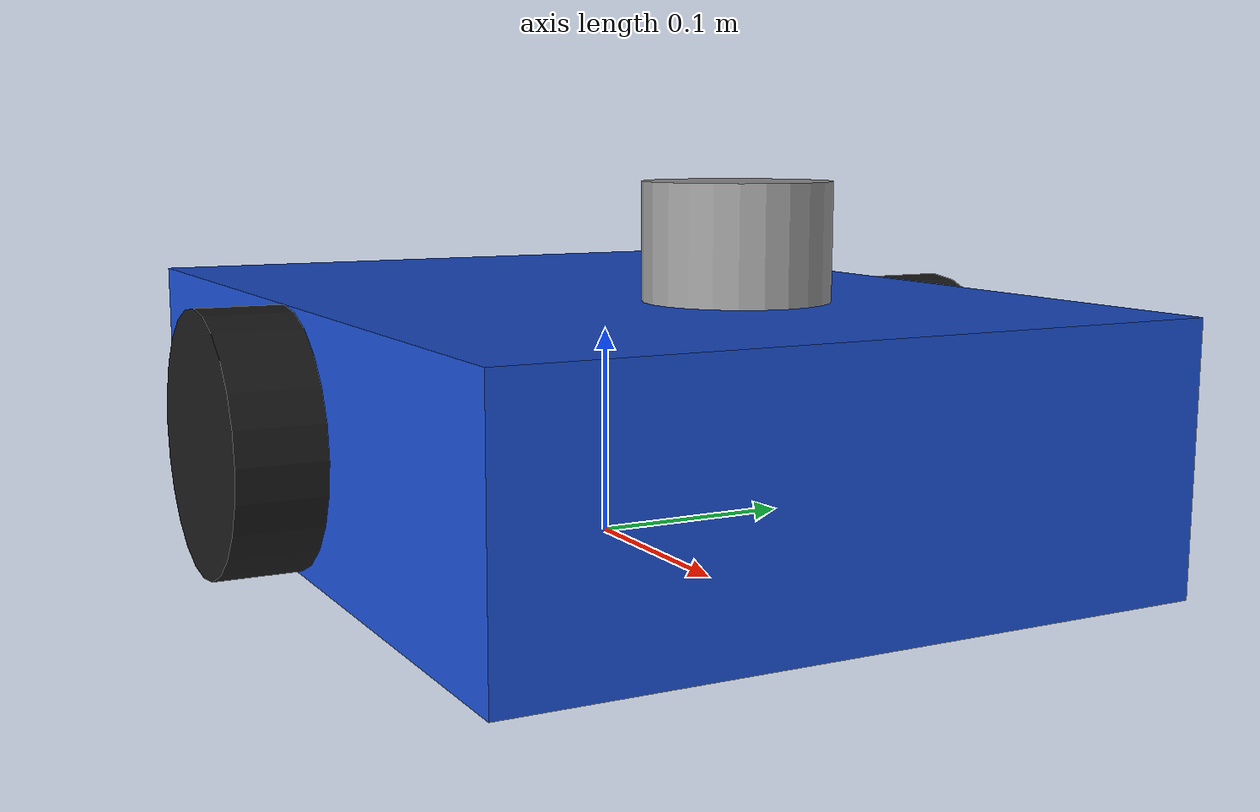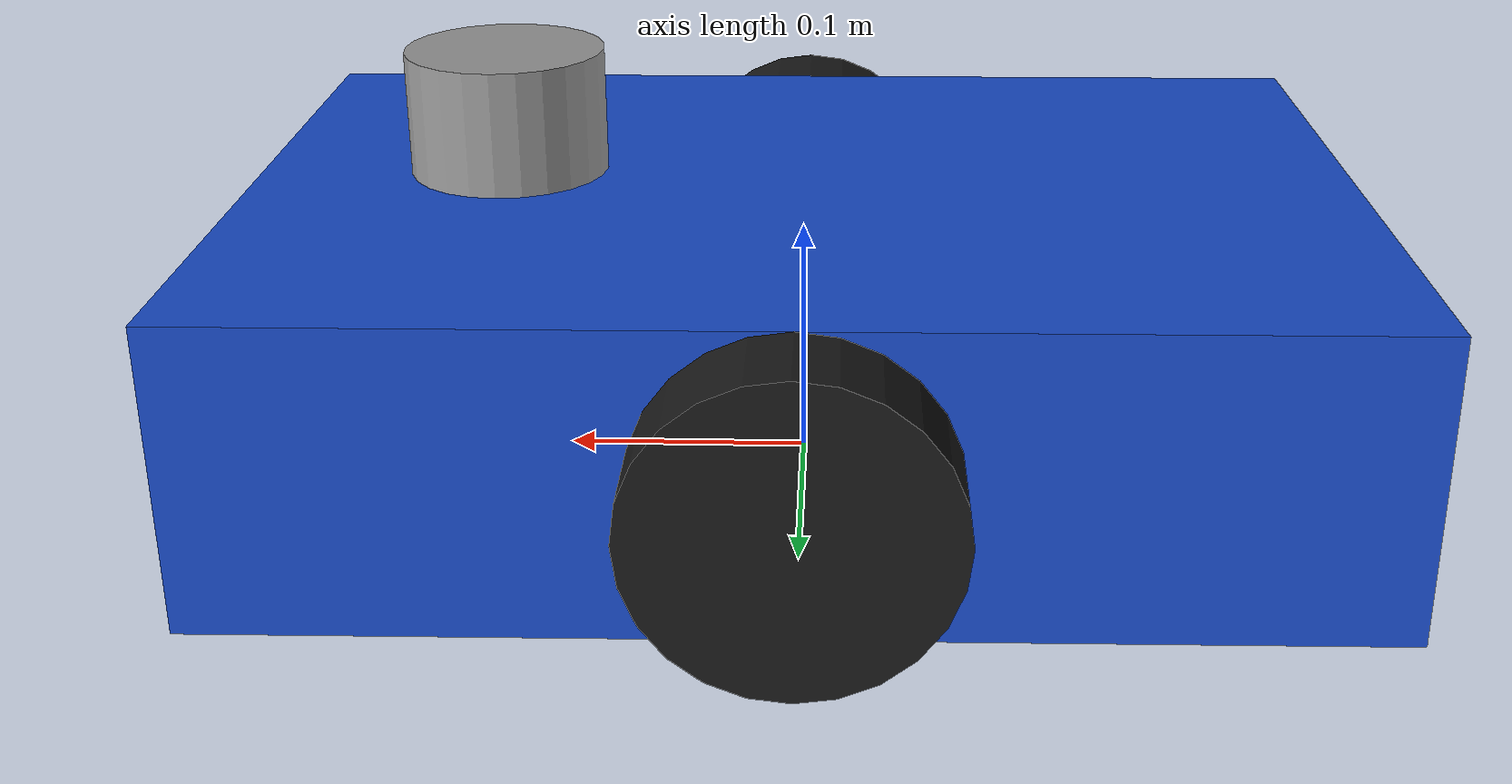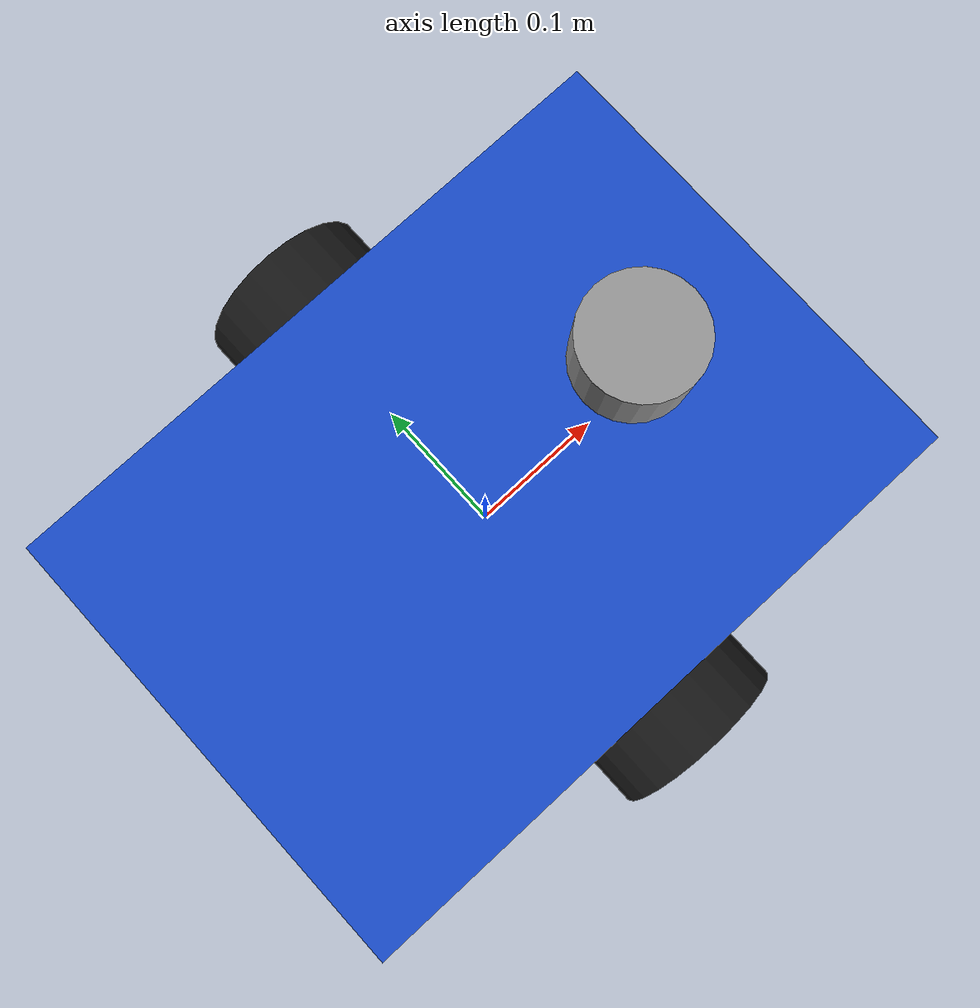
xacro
<?xml version="1.0"?>
<robot name="navbot_x" xmlns:xacro="http://www.ros.org/wiki/xacro">

  <xacro:property name="base_length" value="0.45"/>
  <xacro:property name="base_width" value="0.32"/>
  <xacro:property name="base_height" value="0.12"/>
  <xacro:property name="wheel_radius" value="0.06"/>
  <xacro:property name="wheel_width" value="0.04"/>
  <xacro:property name="caster_radius" value="0.03"/>

  <material name="blue">
    <color rgba="0.1 0.3 0.8 1.0"/>
  </material>

  <material name="black">
    <color rgba="0.1 0.1 0.1 1.0"/>
  </material>

  <material name="gray">
    <color rgba="0.6 0.6 0.6 1.0"/>
  </material>

  <link name="base_link">
    <visual>
      <origin xyz="0 0 ${base_height/2}" rpy="0 0 0"/>
      <geometry>
        <box size="${base_length} ${base_width} ${base_height}"/>
      </geometry>
      <material name="blue"/>
    </visual>

    <collision>
      <origin xyz="0 0 ${base_height/2}" rpy="0 0 0"/>
      <geometry>
        <box size="${base_length} ${base_width} ${base_height}"/>
      </geometry>
    </collision>

    <inertial>
      <origin xyz="0 0 ${base_height/2}" rpy="0 0 0"/>
      <mass value="8.0"/>
      <inertia ixx="0.15" ixy="0.0" ixz="0.0"
               iyy="0.20" iyz="0.0"
               izz="0.25"/>
    </inertial>
  </link>

  <link name="left_wheel_link">
    <visual>
      <origin xyz="0 0 0" rpy="1.5708 0 0"/>
      <geometry>
        <cylinder radius="${wheel_radius}" length="${wheel_width}"/>
      </geometry>
      <material name="black"/>
    </visual>

    <collision>
      <origin xyz="0 0 0" rpy="1.5708 0 0"/>
      <geometry>
        <cylinder radius="${wheel_radius}" length="${wheel_width}"/>
      </geometry>
    </collision>

    <inertial>
      <mass value="0.8"/>
      <inertia ixx="0.001" ixy="0.0" ixz="0.0"
               iyy="0.001" iyz="0.0"
               izz="0.001"/>
    </inertial>
  </link>

  <joint name="left_wheel_joint" type="continuous">
    <parent link="base_link"/>
    <child link="left_wheel_link"/>
    <origin xyz="0 0.18 ${wheel_radius}" rpy="0 0 0"/>
    <axis xyz="0 1 0"/>
  </joint>

  <link name="right_wheel_link">
    <visual>
      <origin xyz="0 0 0" rpy="1.5708 0 0"/>
      <geometry>
        <cylinder radius="${wheel_radius}" length="${wheel_width}"/>
      </geometry>
      <material name="black"/>
    </visual>

    <collision>
      <origin xyz="0 0 0" rpy="1.5708 0 0"/>
      <geometry>
        <cylinder radius="${wheel_radius}" length="${wheel_width}"/>
      </geometry>
    </collision>

    <inertial>
      <mass value="0.8"/>
      <inertia ixx="0.001" ixy="0.0" ixz="0.0"
               iyy="0.001" iyz="0.0"
               izz="0.001"/>
    </inertial>
  </link>

  <joint name="right_wheel_joint" type="continuous">
    <parent link="base_link"/>
    <child link="right_wheel_link"/>
    <origin xyz="0 -0.18 ${wheel_radius}" rpy="0 0 0"/>
    <axis xyz="0 1 0"/>
  </joint>

  <link name="caster_link">
    <visual>
      <origin xyz="0 0 0" rpy="0 0 0"/>
      <geometry>
        <sphere radius="${caster_radius}"/>
      </geometry>
      <material name="gray"/>
    </visual>

    <collision>
      <origin xyz="0 0 0" rpy="0 0 0"/>
      <geometry>
        <sphere radius="${caster_radius}"/>
      </geometry>
    </collision>

    <inertial>
      <mass value="0.3"/>
      <inertia ixx="0.0002" ixy="0.0" ixz="0.0"
               iyy="0.0002" iyz="0.0"
               izz="0.0002"/>
    </inertial>
  </link>

  <joint name="caster_joint" type="fixed">
    <parent link="base_link"/>
    <child link="caster_link"/>
    <origin xyz="-0.16 0 ${caster_radius}" rpy="0 0 0"/>
  </joint>

  <link name="lidar_link">
    <visual>
      <origin xyz="0 0 0" rpy="0 0 0"/>
      <geometry>
        <cylinder radius="0.04" length="0.05"/>
      </geometry>
      <material name="gray"/>
    </visual>

    <collision>
      <origin xyz="0 0 0" rpy="0 0 0"/>
      <geometry>
        <cylinder radius="0.04" length="0.05"/>
      </geometry>
    </collision>

    <inertial>
      <mass value="0.2"/>
      <inertia ixx="0.0001" ixy="0.0" ixz="0.0"
               iyy="0.0001" iyz="0.0"
               izz="0.0001"/>
    </inertial>
  </link>

  <joint name="lidar_joint" type="fixed">
    <parent link="base_link"/>
    <child link="lidar_link"/>
    <origin xyz="0.12 0 ${base_height + 0.03}" rpy="0 0 0"/>
  </joint>

    <gazebo>
    <plugin
      filename="gz-sim-diff-drive-system"
      name="gz::sim::systems::DiffDrive">
      <left_joint>left_wheel_joint</left_joint>
      <right_joint>right_wheel_joint</right_joint>
      <wheel_separation>0.36</wheel_separation>
      <wheel_radius>0.06</wheel_radius>
      <topic>cmd_vel</topic>
      <odom_topic>odom</odom_topic>
      <tf_topic>tf</tf_topic>
      <frame_id>odom</frame_id>
      <child_frame_id>base_link</child_frame_id>
    </plugin>
  </gazebo>
      <gazebo reference="lidar_link">
    <sensor name="lidar_sensor" type="gpu_lidar">
      <always_on>true</always_on>
      <visualize>true</visualize>
      <update_rate>10</update_rate>
      <topic>scan</topic>
      <gz_frame_id>lidar_link</gz_frame_id>
      <lidar>
        <scan>
          <horizontal>
            <samples>360</samples>
            <resolution>1</resolution>
            <min_angle>-3.14159</min_angle>
            <max_angle>3.14159</max_angle>
          </horizontal>
        </scan>
        <range>
          <min>0.12</min>
          <max>8.0</max>
          <resolution>0.01</resolution>
        </range>
      </lidar>
    </sensor>
  </gazebo>

</robot>
